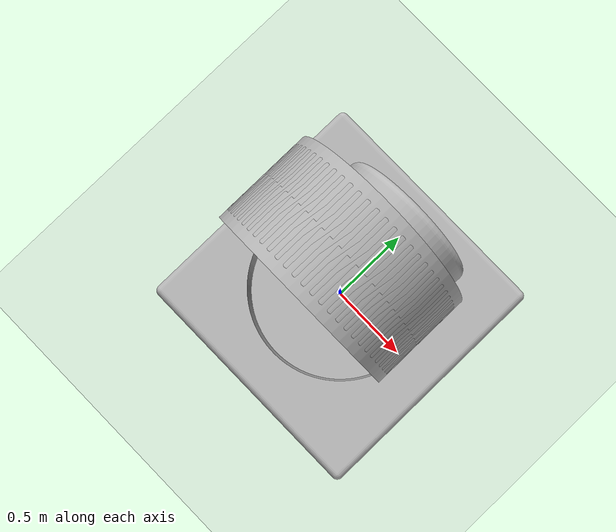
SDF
<?xml version="1.0" ?>
<sdf version="1.10" xmlns:xsi="http://www.w3.org/2001/XMLSchema-instance">
    <world name="car_world">
        <physics name="1ms" type="ignored">
            <max_step_size>0.001</max_step_size>
            <real_time_factor>1.0</real_time_factor>
        </physics>
        <plugin
            filename="gz-sim-physics-system"
            name="gz::sim::systems::Physics">
        </plugin>
        <plugin
            filename="gz-sim-user-commands-system"
            name="gz::sim::systems::UserCommands">
        </plugin>
        <plugin
            filename="gz-sim-scene-broadcaster-system"
            name="gz::sim::systems::SceneBroadcaster">
        </plugin>

        <light type="directional" name="sun">
            <cast_shadows>true</cast_shadows>
            <pose>0 0 10 0 0 0</pose>
            <diffuse>0.8 0.8 0.8 1</diffuse>
            <specular>0.2 0.2 0.2 1</specular>
            <attenuation>
                <range>1000</range>
                <constant>0.9</constant>
                <linear>0.01</linear>
                <quadratic>0.001</quadratic>
            </attenuation>
            <direction>-0.5 0.1 -0.9</direction>
        </light>

        <model name="ground_plane">
            <static>true</static>
            <link name="link">
                <collision name="collision">
                <geometry>
                    <plane>
                    <normal>0 0 1</normal>
                    </plane>
                </geometry>
                </collision>
                <visual name="visual">
                <geometry>
                    <plane>
                    <normal>0 0 1</normal>
                    <size>100 100</size>
                    </plane>
                </geometry>
                <material>
                    <ambient>0.8 0.8 0.8 1</ambient>
                    <diffuse>0.8 0.8 0.8 1</diffuse>
                    <specular>0.8 0.8 0.8 1</specular>
                </material>
                </visual>
            </link>
        </model>

        <model name='sketch_follower' canonical_link='base'>
            <pose relative_to='world'>0 0 0 0 0 0</pose>

            <link name='base'>
                <pose relative_to='__model__'>0 0 0 0 0 0</pose>
                <inertial>
                    <mass>1.2</mass>
                    <inertia>
                        <ixx>0.292</ixx>
                        <ixy>0</ixy>
                        <ixz>0</ixz>
                        <iyy>0.292</iyy>
                        <iyz>0</iyz>
                        <izz>0.512</izz>
                    </inertia>
                </inertial>

                <visual name='visual'>
                    <geometry>
                        <mesh>
                            <uri>../robot_description/meshes/3d_base_link.stl</uri>
                            <scale>0.02 0.02 0.02</scale>
                        </mesh>
                    </geometry>
                    <material>
                    </material>
                </visual>

                <collision name='collision'>
                    <geometry>
                        <mesh>
                            <uri>../robot_description/meshes/3d_base_link.stl</uri>
                            <scale>0.02 0.02 0.02</scale>
                        </mesh>
                    </geometry>
                </collision>
            </link>

            <link name='base_arm_slot'>
                <pose relative_to='__model__'>0 0 0 0 0 0</pose>

                <visual name='visual'>
                    <geometry>
                        <mesh>
                            <uri>../robot_description/meshes/3d_base_arm_slot.stl</uri>
                            <scale>0.02 0.02 0.02</scale>
                        </mesh>
                    </geometry>
                    <material>
                    </material>
                </visual>

                <collision name='collision'>
                    <geometry>
                        <mesh>
                            <uri>../robot_description/meshes/3d_base_arm_slot.stl</uri>
                            <scale>0.02 0.02 0.02</scale>
                        </mesh>
                    </geometry>
                </collision>
            </link>

            <joint name='base_arm_slot_joint' type='continuous'>
                <pose relative_to='base'/>
                <parent>base</parent>
                <child>base_arm_slot</child>
                <axis>
                    <xyz expressed_in='__model__'>0 0 1</xyz>
                </axis>
            </joint>

            <link name='arm_link_1'>
                <pose relative_to='__model__'>0 0 0 1.57079 0 3.141592</pose>

                <visual name='visual'>
                    <geometry>
                        <mesh>
                            <uri>../robot_description/meshes/3d_arm_link.stl</uri>
                            <scale>0.02 0.02 0.02</scale>
                        </mesh>
                    </geometry>
                    <material>
                    </material>
                </visual>

                <collision name='collision'>
                    <geometry>
                        <mesh>
                            <uri>../robot_description/meshes/3d_arm_link.stl</uri>
                            <scale>0.02 0.02 0.02</scale>
                        </mesh>
                    </geometry>
                </collision>
            </link>

            <joint name='arm_link_1_joint' type='continuous'>
                <pose relative_to='base'/>
                <parent>base_arm_slot</parent>
                <child>arm_link_1</child>
                <axis>
                    <xyz expressed_in='__model__'>0 1 0</xyz>
                </axis>
            </joint>

            <link name='arm_link_2'>
                <pose relative_to='__model__'>0 0 0 1.57079 0 0</pose>

                <visual name='visual'>
                    <geometry>
                        <mesh>
                            <uri>../robot_description/meshes/3d_arm_link.stl</uri>
                            <scale>0.02 0.02 0.02</scale>
                        </mesh>
                    </geometry>
                    <material>
                    </material>
                </visual>

                <collision name='collision'>
                    <geometry>
                        <mesh>
                            <uri>../robot_description/meshes/3d_arm_link.stl</uri>
                            <scale>0.02 0.02 0.02</scale>
                        </mesh>
                    </geometry>
                </collision>
            </link>

            <joint name='arm_link_2_joint' type='continuous'>
                <pose relative_to='base'/>
                <parent>arm_link_1</parent>
                <child>arm_link_2</child>
                <axis>
                    <xyz expressed_in='__model__'>0 1 0</xyz>
                </axis>
            </joint>

            <link name='end_effector'>
                <pose relative_to='__model__'>0 0 0 1.57079 0 3.141592</pose>

                <visual name='visual'>
                    <geometry>
                        <mesh>
                            <uri>../robot_description/meshes/3d_end_effector.stl</uri>
                            <scale>0.02 0.02 0.02</scale>
                        </mesh>
                    </geometry>
                    <material>
                    </material>
                </visual>

                <collision name='collision'>
                    <geometry>
                        <mesh>
                            <uri>../robot_description/meshes/3d_end_effector.stl</uri>
                            <scale>0.02 0.02 0.02</scale>
                        </mesh>
                    </geometry>
                </collision>
            </link>

            <joint name='end_effector_joint' type='continuous'>
                <pose relative_to='base'/>
                <parent>arm_link_2</parent>
                <child>end_effector</child>
                <axis>
                    <xyz expressed_in='__model__'>0 1 0</xyz>
                </axis>
            </joint>
        </model>
    </world>
</sdf>
